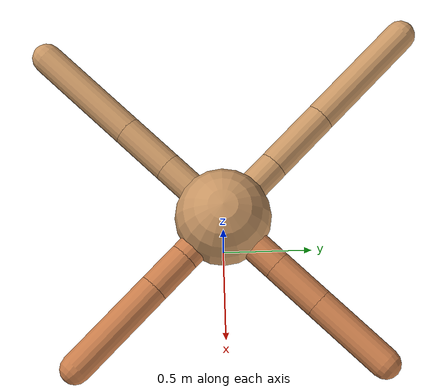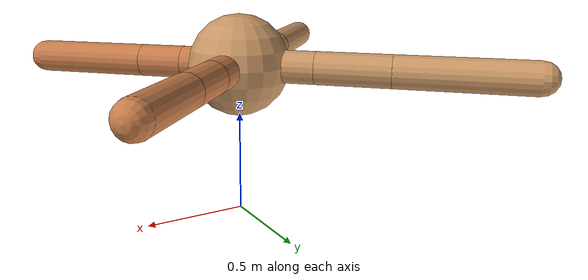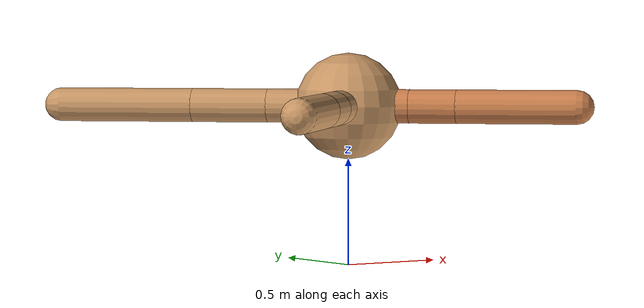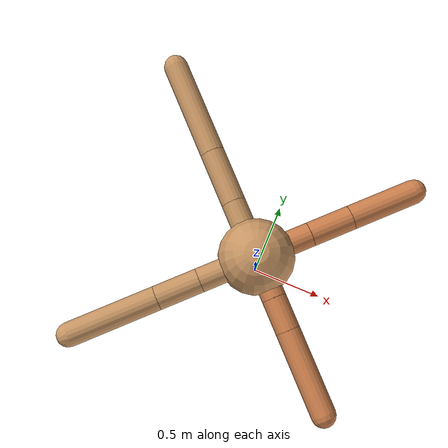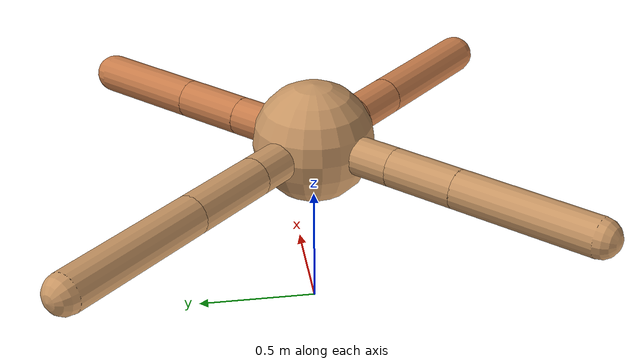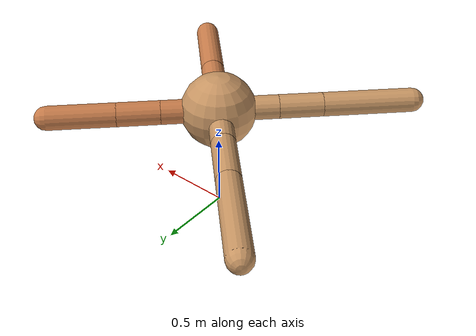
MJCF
<mujoco model="ant">
  <compiler angle="degree" coordinate="local" inertiafromgeom="true" />
  <option integrator="RK4" timestep="0.01" />
  <custom>
    <numeric data="0.0 0.0 0.55 1.0 0.0 0.0 0.0 0.0 1.0 0.0 -1.0 0.0 -1.0 0.0 1.0" name="init_qpos" />
  </custom>
  <default>
    <joint armature="1" damping="1" limited="true" />
    <geom conaffinity="0" condim="3" density="5.0" friction="1.5 0.1 0.1" margin="0.01" rgba="0.8 0.6 0.4 1" />
  </default>
  <worldbody>
    <body name="torso" pos="0 0 0.75">
      <geom name="torso_geom" pos="0 0 0" size="0.25" type="sphere" />

      <body name="front_left_leg" pos="0 0 0">
        <geom fromto="0.0 0.0 0.0 0.266535540624778 0.266535540624778 0.0" name="aux_1_geom" size="0.08" type="capsule" rgba=".8 .5 .3 1" />
        <body name="aux_1" pos="0.266535540624778 0.266535540624778 0.0">
          <joint axis="0 0 1" name="hip_1" pos="0.0 0.0 0.0" range="-40 40" type="hinge" />
          <geom fromto="0.0 0.0 0.0 0.20172536373510402 0.20172536373510402 0.0" name="left_leg_geom" size="0.08" type="capsule" rgba=".8 .5 .3 1" />
          <body pos="0.20172536373510402 0.20172536373510402 0.0" name="front_left_foot">
            <joint axis="-1 1 0" name="ankle_1" pos="0.0 0.0 0.0" range="30 100" type="hinge" />
            <geom fromto="0.0 0.0 0.0 0.31673552105531755 0.31673552105531755 0.0" name="left_ankle_geom" size="0.08" type="capsule" rgba=".8 .5 .3 1" />
          </body>
        </body>
      </body>
      <body name="front_right_leg" pos="0 0 0">
        <geom fromto="0.0 0.0 0.0 -0.2718556171610932 0.2718556171610932 0.0" name="aux_2_geom" size="0.08" type="capsule" />
        <body name="aux_2" pos="-0.2718556171610932 0.2718556171610932 0.0">
          <joint axis="0 0 1" name="hip_2" pos="0.0 0.0 0.0" range="-40 40" type="hinge" />
          <geom fromto="0.0 0.0 0.0 -0.25612335551644977 0.25612335551644977 0.0" name="right_leg_geom" size="0.08" type="capsule" />
          <body pos="-0.25612335551644977 0.25612335551644977 0.0" name="front_right_foot">
            <joint axis="1 1 0" name="ankle_2" pos="0.0 0.0 0.0" range="-100 -30" type="hinge" />
            <geom fromto="0.0 0.0 0.0 -0.452947796937637 0.452947796937637 0.0" name="right_ankle_geom" size="0.08" type="capsule" />
          </body>
        </body>
      </body>
      <body name="left_back_leg" pos="0 0 0">
        <geom fromto="0.0 0.0 0.0 -0.2794427702914361 -0.2794427702914361 0.0" name="aux_3_geom" size="0.08" type="capsule" />
        <body name="aux_3" pos="-0.2794427702914361 -0.2794427702914361 0.0">
          <joint axis="0 0 1" name="hip_3" pos="0.0 0.0 0.0" range="-40 40" type="hinge" />
          <geom fromto="0.0 0.0 0.0 -0.20682686781926246 -0.20682686781926246 0.0" name="back_leg_geom" size="0.08" type="capsule" />
          <body pos="-0.20682686781926246 -0.20682686781926246 0.0" name="left_back_foot">
            <joint axis="-1 1 0" name="ankle_3" pos="0.0 0.0 0.0" range="-100 -30" type="hinge" />
            <geom fromto="0.0 0.0 0.0 -0.4234546083016179 -0.4234546083016179 0.0" name="third_ankle_geom" size="0.08" type="capsule" />
          </body>
        </body>
      </body>
      <body name="right_back_leg" pos="0 0 0">
        <geom fromto="0.0 0.0 0.0 0.2047745102817361 -0.2047745102817361 0.0" name="aux_4_geom" size="0.08" type="capsule" rgba=".8 .5 .3 1" />
        <body name="aux_4" pos="0.2047745102817361 -0.2047745102817361 0.0">
          <joint axis="0 0 1" name="hip_4" pos="0.0 0.0 0.0" range="-40 40" type="hinge" />
          <geom fromto="0.0 0.0 0.0 0.15737690676976476 -0.15737690676976476 0.0" name="rightback_leg_geom" size="0.08" type="capsule" rgba=".8 .5 .3 1" />
          <body pos="0.15737690676976476 -0.15737690676976476 0.0" name="right_back_foot">
            <joint axis="1 1 0" name="ankle_4" pos="0.0 0.0 0.0" range="30 100" type="hinge" />
            <geom fromto="0.0 0.0 0.0 0.3995049337219739 -0.3995049337219739 0.0" name="fourth_ankle_geom" size="0.08" type="capsule" rgba=".8 .5 .3 1" />
          </body>
        </body>
      </body>
    </body>
  </worldbody>
  <actuator>
    <motor ctrllimited="true" ctrlrange="-1.0 1.0" joint="hip_4" gear="150" />
    <motor ctrllimited="true" ctrlrange="-1.0 1.0" joint="ankle_4" gear="150" />
    <motor ctrllimited="true" ctrlrange="-1.0 1.0" joint="hip_1" gear="150" />
    <motor ctrllimited="true" ctrlrange="-1.0 1.0" joint="ankle_1" gear="150" />
    <motor ctrllimited="true" ctrlrange="-1.0 1.0" joint="hip_2" gear="150" />
    <motor ctrllimited="true" ctrlrange="-1.0 1.0" joint="ankle_2" gear="150" />
    <motor ctrllimited="true" ctrlrange="-1.0 1.0" joint="hip_3" gear="150" />
    <motor ctrllimited="true" ctrlrange="-1.0 1.0" joint="ankle_3" gear="150" />
  </actuator>
</mujoco>
